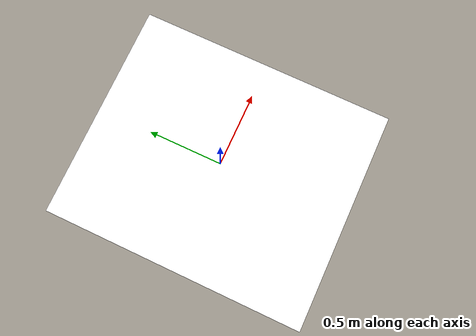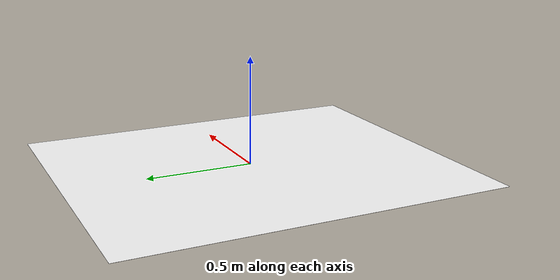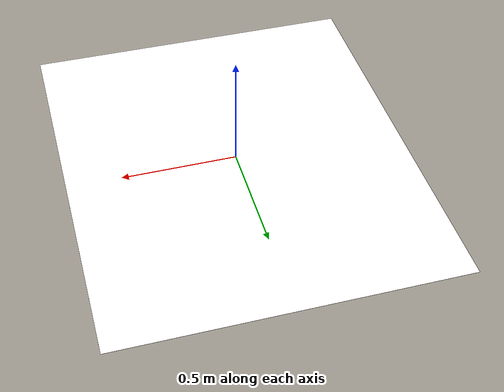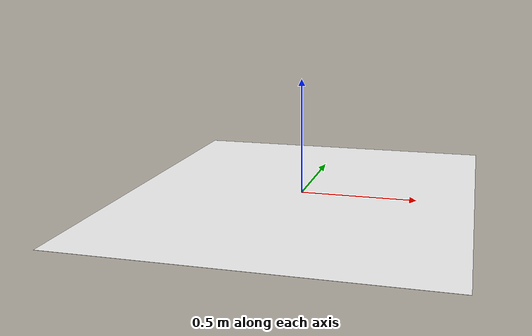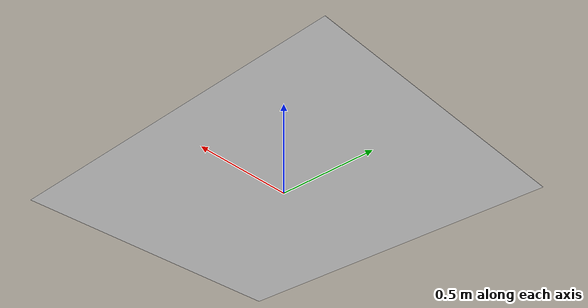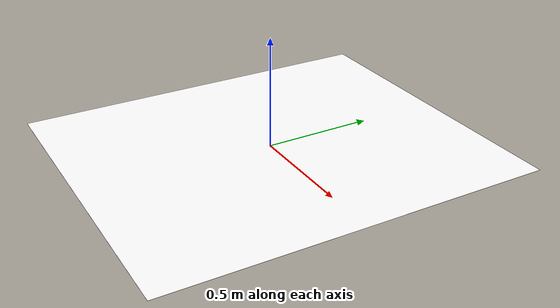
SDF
<?xml version='1.0'?>
<sdf version='1.6'>
  <model name='race_track15'>
    <static>true</static>
    <link name='link'>
      <visual name='visual'>
        <geometry>
          <box>
            <size>1.477 1.750 0.000553</size>
          </box>
        </geometry>
        <material>
          <script>
            <name>RaceTrack15/track15</name>
	    <uri>model://racetrack15/materials/scripts</uri>
            <uri>model://racetrack15/materials/textures</uri>
          </script>
          <ambient>1 1 1 1</ambient>
          <diffuse>1 1 1 1</diffuse>
          <specular>0.01 0.01 0.01 1</specular>
          <emissive>1 1 1 1</emissive>
        </material>
        <transparency>0</transparency>
      </visual>
      <collision name='collision'>
        <geometry>
          <box>
            <size>1.477 1.750 0.000553</size>
          </box>
        </geometry>
	<surface>
          <friction>
            <ode>
              <mu>100</mu>
              <mu2>50</mu2>
            </ode>
          </friction>
        </surface>
      </collision>
    </link>
  </model>
</sdf>
